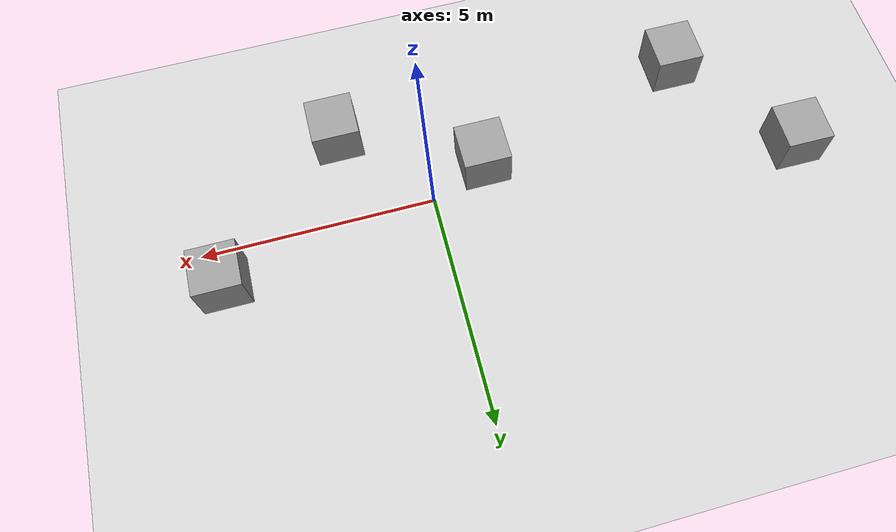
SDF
<sdf version="1.6">
 <world name="default">
  <light name="sun" type="directional">
   <pose>0 0 10 0 -0 0</pose>
   <diffuse>0.8 0.8 0.8 1</diffuse>
   <specular>0.1 0.1 0.1 1</specular>
   <attenuation>
    <range>1000</range>
    <constant>0.9</constant>
    <linear>0.01</linear>
    <quadratic>0.001</quadratic>
   </attenuation>
   <direction>-0.5 0.5 -1</direction>
  </light>
  <model name="ground_plane">
   <static>1</static>
   <link name="link">
    <collision name="collision">
     <geometry><plane><normal>0 0 1</normal><size>100 100</size></plane></geometry>
     <surface><friction><ode><mu>100</mu><mu2>50</mu2></ode></friction></surface>
    </collision>
    <visual name="visual">
     <cast_shadows>0</cast_shadows>
     <geometry><plane><normal>0 0 1</normal><size>100 100</size></plane></geometry>
     <material>
      <script><uri>file://media/materials/scripts/gazebo.material</uri><name>Gazebo/Grey</name></script>
     </material>
    </visual>
   </link>
  </model>
  <gravity>0 0 -9.8</gravity>
  <magnetic_field>6e-06 2.3e-05 -4.2e-05</magnetic_field>
  <atmosphere type="adiabatic"/>
  <physics name="default_physics" default="0" type="ode">
   <max_step_size>0.001</max_step_size>
   <real_time_factor>1</real_time_factor>
   <real_time_update_rate>1000</real_time_update_rate>
  </physics>
  <scene><ambient>0.4 0.4 0.4 1</ambient><background>0.7 0.7 0.7 1</background><shadows>1</shadows></scene>
  <spherical_coordinates>
   <surface_model>EARTH_WGS84</surface_model>
   <latitude_deg>0</latitude_deg>
   <longitude_deg>0</longitude_deg>
   <elevation>0</elevation>
   <heading_deg>0</heading_deg>
  </spherical_coordinates>
  <model name="unit_box_0_4">
   <pose>-5.94999 -1.8681 0.5 0 0 -1e-06</pose>
   <link name="link">
    <inertial>
     <mass>1</mass>
     <inertia>
      <ixx>0.166667</ixx>
      <ixy>0</ixy>
      <ixz>0</ixz>
      <iyy>0.166667</iyy>
      <iyz>0</iyz>
      <izz>0.166667</izz>
     </inertia>
    </inertial>
    <collision name="collision"><geometry><box><size>1 1 1</size></box></geometry></collision>
    <visual name="visual">
     <geometry><box><size>1 1 1</size></box></geometry>
     <material>
      <script><name>Gazebo/Grey</name><uri>file://media/materials/scripts/gazebo.material</uri></script>
     </material>
    </visual>
   </link>
  </model>
  <model name="unit_box_0_5">
   <pose>1.70203 -2.0023 0.5 0 -0 0.000387</pose>
   <link name="link">
    <inertial>
     <mass>1</mass>
     <inertia>
      <ixx>0.166667</ixx>
      <ixy>0</ixy>
      <ixz>0</ixz>
      <iyy>0.166667</iyy>
      <iyz>0</iyz>
      <izz>0.166667</izz>
     </inertia>
    </inertial>
    <collision name="collision"><geometry><box><size>1 1 1</size></box></geometry></collision>
    <visual name="visual">
     <geometry><box><size>1 1 1</size></box></geometry>
     <material>
      <script><name>Gazebo/Grey</name><uri>file://media/materials/scripts/gazebo.material</uri></script>
     </material>
    </visual>
   </link>
  </model>
  <model name="unit_box_0_6">
   <pose>4.58017 0.759351 0.5 0 -0 0.00013</pose>
   <link name="link">
    <inertial>
     <mass>1</mass>
     <inertia>
      <ixx>0.166667</ixx>
      <ixy>0</ixy>
      <ixz>0</ixz>
      <iyy>0.166667</iyy>
      <iyz>0</iyz>
      <izz>0.166667</izz>
     </inertia>
    </inertial>
    <collision name="collision"><geometry><box><size>1 1 1</size></box></geometry></collision>
    <visual name="visual">
     <geometry><box><size>1 1 1</size></box></geometry>
     <material>
      <script><name>Gazebo/Grey</name><uri>file://media/materials/scripts/gazebo.material</uri></script>
     </material>
    </visual>
   </link>
  </model>
  <model name="unit_box_0_7">
   <pose>-1.22761 -0.5641 0.5 0 0 -0.000504</pose>
   <link name="link">
    <inertial>
     <mass>1</mass>
     <inertia>
      <ixx>0.166667</ixx>
      <ixy>0</ixy>
      <ixz>0</ixz>
      <iyy>0.166667</iyy>
      <iyz>0</iyz>
      <izz>0.166667</izz>
     </inertia>
    </inertial>
    <collision name="collision"><geometry><box><size>1 1 1</size></box></geometry></collision>
    <visual name="visual">
     <geometry><box><size>1 1 1</size></box></geometry>
     <material>
      <script><name>Gazebo/Grey</name><uri>file://media/materials/scripts/gazebo.material</uri></script>
     </material>
    </visual>
   </link>
  </model>
  <model name="unit_box_0_8">
   <pose>-7.87072 0.751472 0.5 0 0 -0.007206</pose>
   <link name="link">
    <inertial>
     <mass>1</mass>
     <inertia>
      <ixx>0.166667</ixx>
      <ixy>0</ixy>
      <ixz>0</ixz>
      <iyy>0.166667</iyy>
      <iyz>0</iyz>
      <izz>0.166667</izz>
     </inertia>
    </inertial>
    <collision name="collision"><geometry><box><size>1 1 1</size></box></geometry></collision>
    <visual name="visual">
     <geometry><box><size>1 1 1</size></box></geometry>
     <material>
      <script><name>Gazebo/Grey</name><uri>file://media/materials/scripts/gazebo.material</uri></script>
     </material>
    </visual>
   </link>
  </model>
 </world>
</sdf>
